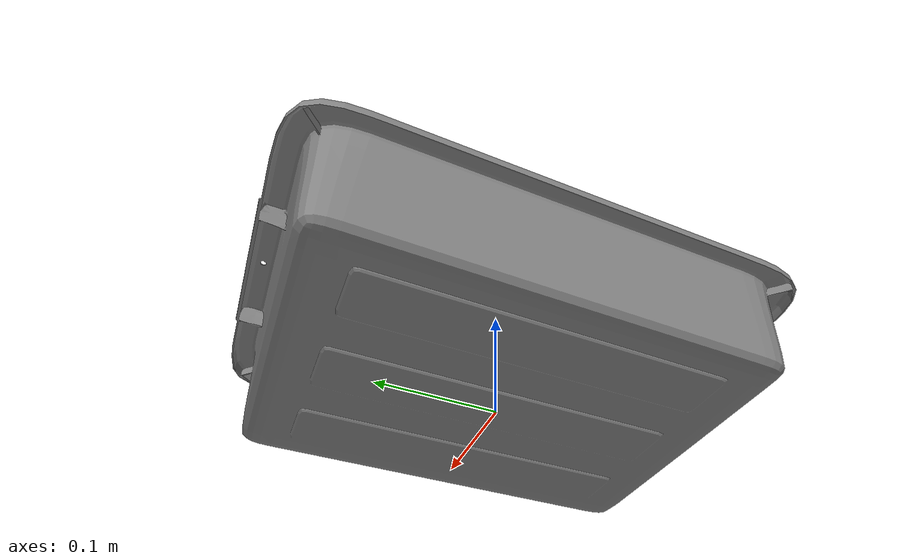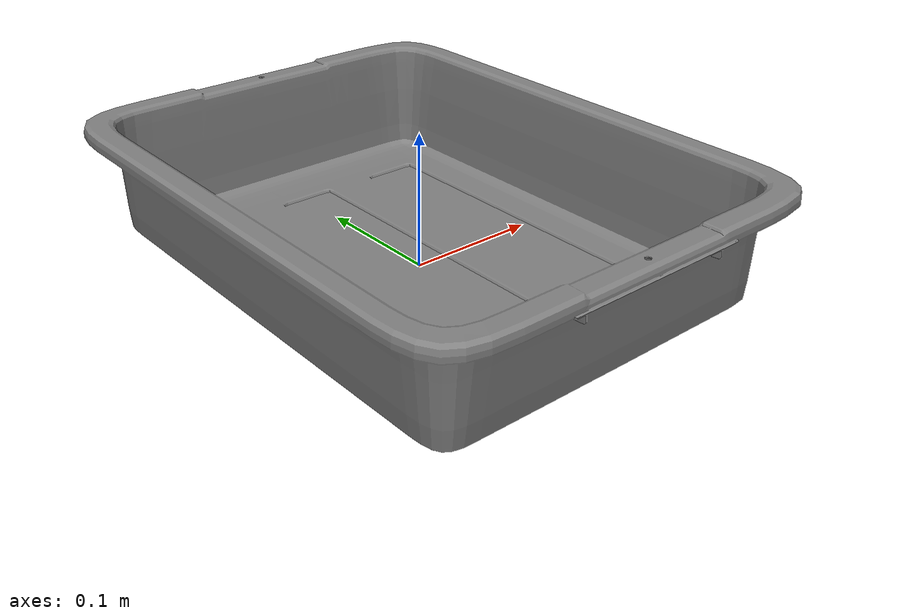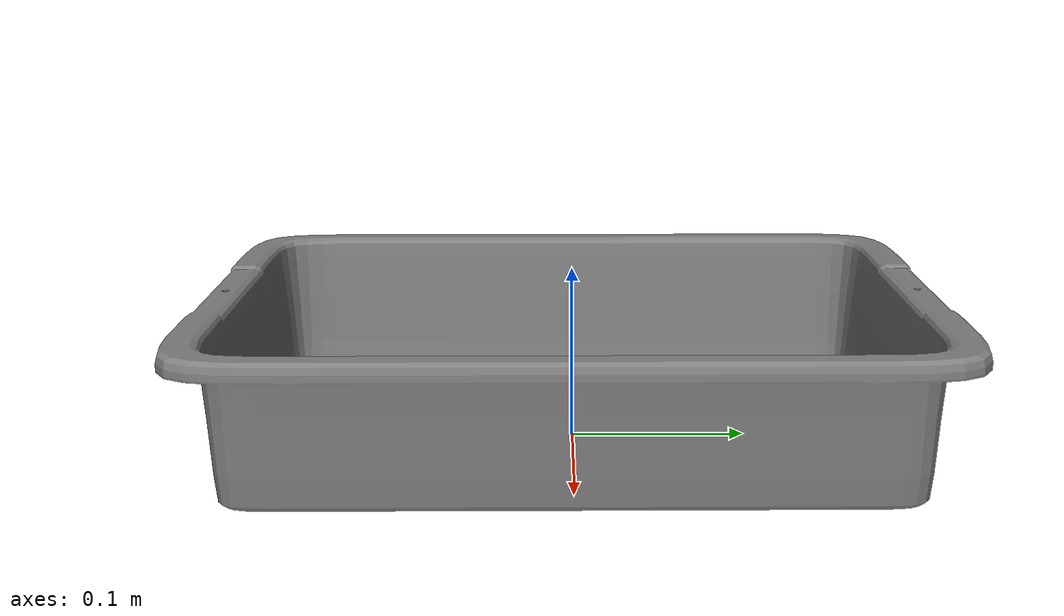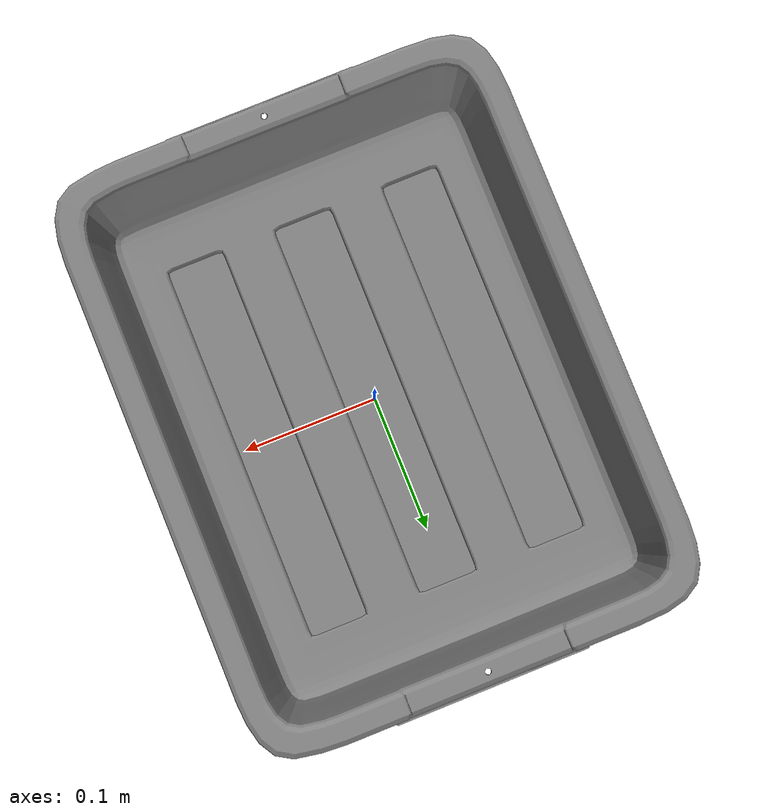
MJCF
<mujoco model="bin">

    <compiler angle="radian" meshdir="./" autolimits="true" />
    <option impratio="10" />
    <default>
        <default class="visual">
            <geom type="mesh" contype="0" conaffinity="0" group="2" />
        </default>
        <default class="collision">
            <geom type="mesh" group="3" />
        </default>
    </default>

    <asset>
        <mesh file="ToteA.L.obj" name="tote" scale="0.75 0.75 0.5" />
        <mesh file="ToteA.L000.obj" name="tote_collision_00" scale="0.75 0.75 0.5" />
        <mesh file="ToteA.L001.obj" name="tote_collision_01" scale="0.75 0.75 0.5" />
        <mesh file="ToteA.L002.obj" name="tote_collision_02" scale="0.75 0.75 0.5" />
        <mesh file="ToteA.L003.obj" name="tote_collision_03" scale="0.75 0.75 0.5" />
        <mesh file="ToteA.L004.obj" name="tote_collision_04" scale="0.75 0.75 0.5" />
        <mesh file="ToteA.L005.obj" name="tote_collision_05" scale="0.75 0.75 0.5" />
        <mesh file="ToteA.L006.obj" name="tote_collision_06" scale="0.75 0.75 0.5" />
        <mesh file="ToteA.L007.obj" name="tote_collision_07" scale="0.75 0.75 0.5" />
        <mesh file="ToteA.L008.obj" name="tote_collision_08" scale="0.75 0.75 0.5" />
        <mesh file="ToteA.L009.obj" name="tote_collision_09" scale="0.75 0.75 0.5" />
    </asset>
    <worldbody>
        <body name="bin">
            <geom mesh="tote" class="visual" />
            <geom mesh="tote_collision_00" class="collision" />
            <geom mesh="tote_collision_01" class="collision" />
            <geom mesh="tote_collision_02" class="collision" />
            <geom mesh="tote_collision_03" class="collision" />
            <geom mesh="tote_collision_04" class="collision" />
            <geom mesh="tote_collision_05" class="collision" />
            <geom mesh="tote_collision_06" class="collision" />
            <geom mesh="tote_collision_07" class="collision" />
            <geom mesh="tote_collision_08" class="collision" />
            <geom mesh="tote_collision_09" class="collision" />
        </body>
    </worldbody>
</mujoco>
